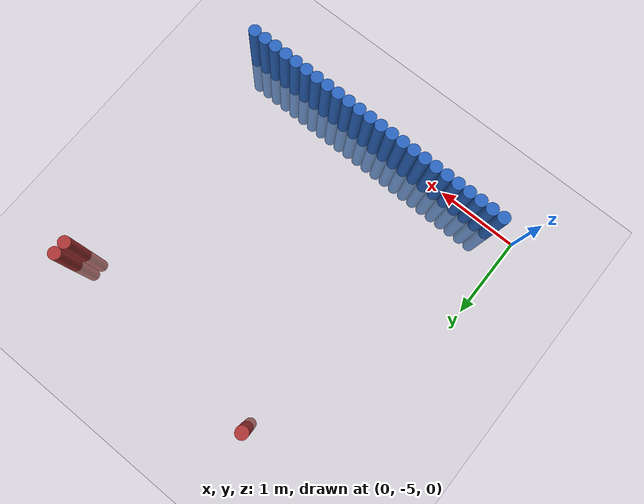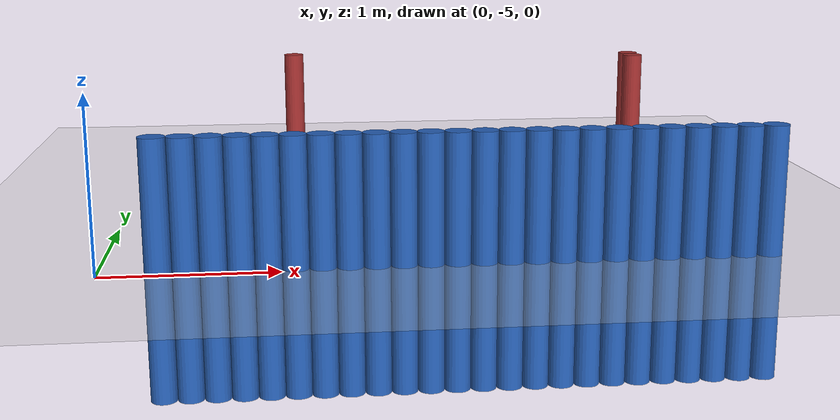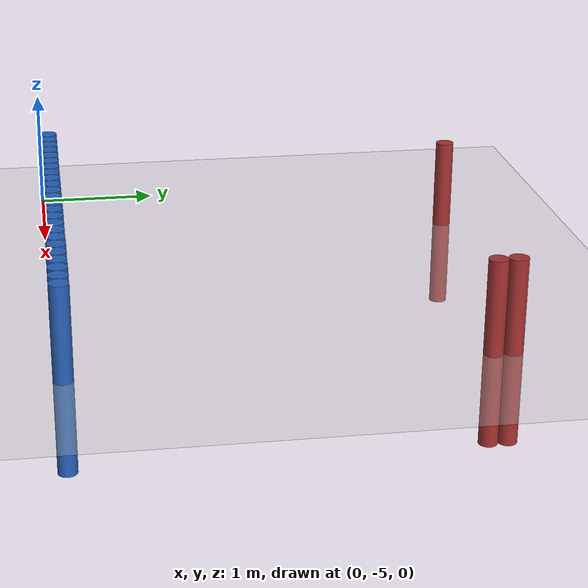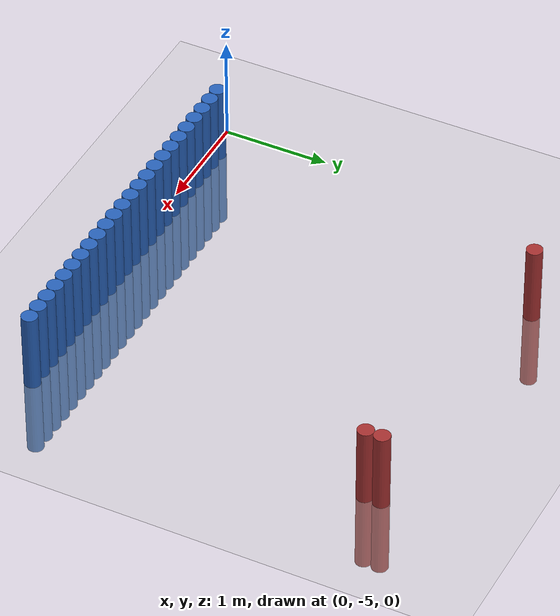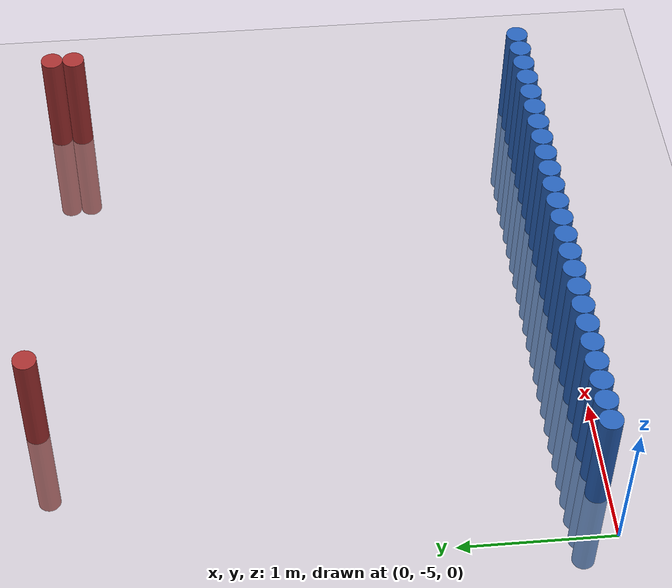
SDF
<sdf version="1.6">
 <world name="default">
  <model name="ground_plane">
   <static>1</static>
   <link name="link">
    <collision name="collision">
     <geometry><plane><normal>0 0 1</normal><size>100 100</size></plane></geometry>
     <surface><friction><ode><mu>100</mu><mu2>50</mu2></ode></friction></surface>
    </collision>
    <visual name="visual">
     <cast_shadows>0</cast_shadows>
     <geometry><plane><normal>0 0 1</normal><size>100 100</size></plane></geometry>
     <material>
      <script><uri>file://media/materials/scripts/gazebo.material</uri><name>Gazebo/Grey</name></script>
     </material>
    </visual>
   </link>
  </model>
  <model name="unit_cylinder_1">
   <static>1</static>
   <pose>3.775000 -4.925000 0.000000 0.000000 0.000000 0.000000</pose>
   <link name="link">
    <inertial>
     <mass>1</mass>
     <inertia><ixx>0.145833</ixx><ixy>0</ixy><ixz>0</ixz><iyy>0.145833</iyy><iyz>0</iyz><izz>0.125</izz></inertia>
    </inertial>
    <collision name="collision">
     <geometry><cylinder><radius>0.075000</radius><length>1.5</length></cylinder></geometry>
    </collision>
    <visual name="visual">
     <geometry><cylinder><radius>0.075000</radius><length>1.5</length></cylinder></geometry>
     <material>
      <ambient>0.152000 0.379000 0.720000 1</ambient>
      <diffuse>0.152000 0.379000 0.720000 1</diffuse>
     </material>
     <material>
      <script><name>Gazebo/Grey</name><uri>file://media/materials/scripts/gazebo.material</uri></script>
     </material>
    </visual>
   </link>
  </model>
  <model name="unit_cylinder_2">
   <static>1</static>
   <pose>3.625000 -4.925000 0.000000 0.000000 0.000000 0.000000</pose>
   <link name="link">
    <inertial>
     <mass>1</mass>
     <inertia><ixx>0.145833</ixx><ixy>0</ixy><ixz>0</ixz><iyy>0.145833</iyy><iyz>0</iyz><izz>0.125</izz></inertia>
    </inertial>
    <collision name="collision">
     <geometry><cylinder><radius>0.075000</radius><length>1.5</length></cylinder></geometry>
    </collision>
    <visual name="visual">
     <geometry><cylinder><radius>0.075000</radius><length>1.5</length></cylinder></geometry>
     <material>
      <ambient>0.152000 0.379000 0.720000 1</ambient>
      <diffuse>0.152000 0.379000 0.720000 1</diffuse>
     </material>
     <material>
      <script><name>Gazebo/Grey</name><uri>file://media/materials/scripts/gazebo.material</uri></script>
     </material>
    </visual>
   </link>
  </model>
  <model name="unit_cylinder_3">
   <static>1</static>
   <pose>3.475000 -4.925000 0.000000 0.000000 0.000000 0.000000</pose>
   <link name="link">
    <inertial>
     <mass>1</mass>
     <inertia><ixx>0.145833</ixx><ixy>0</ixy><ixz>0</ixz><iyy>0.145833</iyy><iyz>0</iyz><izz>0.125</izz></inertia>
    </inertial>
    <collision name="collision">
     <geometry><cylinder><radius>0.075000</radius><length>1.5</length></cylinder></geometry>
    </collision>
    <visual name="visual">
     <geometry><cylinder><radius>0.075000</radius><length>1.5</length></cylinder></geometry>
     <material>
      <ambient>0.152000 0.379000 0.720000 1</ambient>
      <diffuse>0.152000 0.379000 0.720000 1</diffuse>
     </material>
     <material>
      <script><name>Gazebo/Grey</name><uri>file://media/materials/scripts/gazebo.material</uri></script>
     </material>
    </visual>
   </link>
  </model>
  <model name="unit_cylinder_4">
   <static>1</static>
   <pose>3.325000 -4.925000 0.000000 0.000000 0.000000 0.000000</pose>
   <link name="link">
    <inertial>
     <mass>1</mass>
     <inertia><ixx>0.145833</ixx><ixy>0</ixy><ixz>0</ixz><iyy>0.145833</iyy><iyz>0</iyz><izz>0.125</izz></inertia>
    </inertial>
    <collision name="collision">
     <geometry><cylinder><radius>0.075000</radius><length>1.5</length></cylinder></geometry>
    </collision>
    <visual name="visual">
     <geometry><cylinder><radius>0.075000</radius><length>1.5</length></cylinder></geometry>
     <material>
      <ambient>0.152000 0.379000 0.720000 1</ambient>
      <diffuse>0.152000 0.379000 0.720000 1</diffuse>
     </material>
     <material>
      <script><name>Gazebo/Grey</name><uri>file://media/materials/scripts/gazebo.material</uri></script>
     </material>
    </visual>
   </link>
  </model>
  <model name="unit_cylinder_5">
   <static>1</static>
   <pose>3.175000 -4.925000 0.000000 0.000000 0.000000 0.000000</pose>
   <link name="link">
    <inertial>
     <mass>1</mass>
     <inertia><ixx>0.145833</ixx><ixy>0</ixy><ixz>0</ixz><iyy>0.145833</iyy><iyz>0</iyz><izz>0.125</izz></inertia>
    </inertial>
    <collision name="collision">
     <geometry><cylinder><radius>0.075000</radius><length>1.5</length></cylinder></geometry>
    </collision>
    <visual name="visual">
     <geometry><cylinder><radius>0.075000</radius><length>1.5</length></cylinder></geometry>
     <material>
      <ambient>0.152000 0.379000 0.720000 1</ambient>
      <diffuse>0.152000 0.379000 0.720000 1</diffuse>
     </material>
     <material>
      <script><name>Gazebo/Grey</name><uri>file://media/materials/scripts/gazebo.material</uri></script>
     </material>
    </visual>
   </link>
  </model>
  <model name="unit_cylinder_6">
   <static>1</static>
   <pose>3.025000 -4.925000 0.000000 0.000000 0.000000 0.000000</pose>
   <link name="link">
    <inertial>
     <mass>1</mass>
     <inertia><ixx>0.145833</ixx><ixy>0</ixy><ixz>0</ixz><iyy>0.145833</iyy><iyz>0</iyz><izz>0.125</izz></inertia>
    </inertial>
    <collision name="collision">
     <geometry><cylinder><radius>0.075000</radius><length>1.5</length></cylinder></geometry>
    </collision>
    <visual name="visual">
     <geometry><cylinder><radius>0.075000</radius><length>1.5</length></cylinder></geometry>
     <material>
      <ambient>0.152000 0.379000 0.720000 1</ambient>
      <diffuse>0.152000 0.379000 0.720000 1</diffuse>
     </material>
     <material>
      <script><name>Gazebo/Grey</name><uri>file://media/materials/scripts/gazebo.material</uri></script>
     </material>
    </visual>
   </link>
  </model>
  <model name="unit_cylinder_7">
   <static>1</static>
   <pose>2.875000 -4.925000 0.000000 0.000000 0.000000 0.000000</pose>
   <link name="link">
    <inertial>
     <mass>1</mass>
     <inertia><ixx>0.145833</ixx><ixy>0</ixy><ixz>0</ixz><iyy>0.145833</iyy><iyz>0</iyz><izz>0.125</izz></inertia>
    </inertial>
    <collision name="collision">
     <geometry><cylinder><radius>0.075000</radius><length>1.5</length></cylinder></geometry>
    </collision>
    <visual name="visual">
     <geometry><cylinder><radius>0.075000</radius><length>1.5</length></cylinder></geometry>
     <material>
      <ambient>0.152000 0.379000 0.720000 1</ambient>
      <diffuse>0.152000 0.379000 0.720000 1</diffuse>
     </material>
     <material>
      <script><name>Gazebo/Grey</name><uri>file://media/materials/scripts/gazebo.material</uri></script>
     </material>
    </visual>
   </link>
  </model>
  <model name="unit_cylinder_8">
   <static>1</static>
   <pose>2.725000 -4.925000 0.000000 0.000000 0.000000 0.000000</pose>
   <link name="link">
    <inertial>
     <mass>1</mass>
     <inertia><ixx>0.145833</ixx><ixy>0</ixy><ixz>0</ixz><iyy>0.145833</iyy><iyz>0</iyz><izz>0.125</izz></inertia>
    </inertial>
    <collision name="collision">
     <geometry><cylinder><radius>0.075000</radius><length>1.5</length></cylinder></geometry>
    </collision>
    <visual name="visual">
     <geometry><cylinder><radius>0.075000</radius><length>1.5</length></cylinder></geometry>
     <material>
      <ambient>0.152000 0.379000 0.720000 1</ambient>
      <diffuse>0.152000 0.379000 0.720000 1</diffuse>
     </material>
     <material>
      <script><name>Gazebo/Grey</name><uri>file://media/materials/scripts/gazebo.material</uri></script>
     </material>
    </visual>
   </link>
  </model>
  <model name="unit_cylinder_9">
   <static>1</static>
   <pose>2.575000 -4.925000 0.000000 0.000000 0.000000 0.000000</pose>
   <link name="link">
    <inertial>
     <mass>1</mass>
     <inertia><ixx>0.145833</ixx><ixy>0</ixy><ixz>0</ixz><iyy>0.145833</iyy><iyz>0</iyz><izz>0.125</izz></inertia>
    </inertial>
    <collision name="collision">
     <geometry><cylinder><radius>0.075000</radius><length>1.5</length></cylinder></geometry>
    </collision>
    <visual name="visual">
     <geometry><cylinder><radius>0.075000</radius><length>1.5</length></cylinder></geometry>
     <material>
      <ambient>0.152000 0.379000 0.720000 1</ambient>
      <diffuse>0.152000 0.379000 0.720000 1</diffuse>
     </material>
     <material>
      <script><name>Gazebo/Grey</name><uri>file://media/materials/scripts/gazebo.material</uri></script>
     </material>
    </visual>
   </link>
  </model>
  <model name="unit_cylinder_10">
   <static>1</static>
   <pose>2.425000 -4.925000 0.000000 0.000000 0.000000 0.000000</pose>
   <link name="link">
    <inertial>
     <mass>1</mass>
     <inertia><ixx>0.145833</ixx><ixy>0</ixy><ixz>0</ixz><iyy>0.145833</iyy><iyz>0</iyz><izz>0.125</izz></inertia>
    </inertial>
    <collision name="collision">
     <geometry><cylinder><radius>0.075000</radius><length>1.5</length></cylinder></geometry>
    </collision>
    <visual name="visual">
     <geometry><cylinder><radius>0.075000</radius><length>1.5</length></cylinder></geometry>
     <material>
      <ambient>0.152000 0.379000 0.720000 1</ambient>
      <diffuse>0.152000 0.379000 0.720000 1</diffuse>
     </material>
     <material>
      <script><name>Gazebo/Grey</name><uri>file://media/materials/scripts/gazebo.material</uri></script>
     </material>
    </visual>
   </link>
  </model>
  <model name="unit_cylinder_11">
   <static>1</static>
   <pose>2.275000 -4.925000 0.000000 0.000000 0.000000 0.000000</pose>
   <link name="link">
    <inertial>
     <mass>1</mass>
     <inertia><ixx>0.145833</ixx><ixy>0</ixy><ixz>0</ixz><iyy>0.145833</iyy><iyz>0</iyz><izz>0.125</izz></inertia>
    </inertial>
    <collision name="collision">
     <geometry><cylinder><radius>0.075000</radius><length>1.5</length></cylinder></geometry>
    </collision>
    <visual name="visual">
     <geometry><cylinder><radius>0.075000</radius><length>1.5</length></cylinder></geometry>
     <material>
      <ambient>0.152000 0.379000 0.720000 1</ambient>
      <diffuse>0.152000 0.379000 0.720000 1</diffuse>
     </material>
     <material>
      <script><name>Gazebo/Grey</name><uri>file://media/materials/scripts/gazebo.material</uri></script>
     </material>
    </visual>
   </link>
  </model>
  <model name="unit_cylinder_12">
   <static>1</static>
   <pose>2.125000 -4.925000 0.000000 0.000000 0.000000 0.000000</pose>
   <link name="link">
    <inertial>
     <mass>1</mass>
     <inertia><ixx>0.145833</ixx><ixy>0</ixy><ixz>0</ixz><iyy>0.145833</iyy><iyz>0</iyz><izz>0.125</izz></inertia>
    </inertial>
    <collision name="collision">
     <geometry><cylinder><radius>0.075000</radius><length>1.5</length></cylinder></geometry>
    </collision>
    <visual name="visual">
     <geometry><cylinder><radius>0.075000</radius><length>1.5</length></cylinder></geometry>
     <material>
      <ambient>0.152000 0.379000 0.720000 1</ambient>
      <diffuse>0.152000 0.379000 0.720000 1</diffuse>
     </material>
     <material>
      <script><name>Gazebo/Grey</name><uri>file://media/materials/scripts/gazebo.material</uri></script>
     </material>
    </visual>
   </link>
  </model>
  <model name="unit_cylinder_13">
   <static>1</static>
   <pose>1.975000 -4.925000 0.000000 0.000000 0.000000 0.000000</pose>
   <link name="link">
    <inertial>
     <mass>1</mass>
     <inertia><ixx>0.145833</ixx><ixy>0</ixy><ixz>0</ixz><iyy>0.145833</iyy><iyz>0</iyz><izz>0.125</izz></inertia>
    </inertial>
    <collision name="collision">
     <geometry><cylinder><radius>0.075000</radius><length>1.5</length></cylinder></geometry>
    </collision>
    <visual name="visual">
     <geometry><cylinder><radius>0.075000</radius><length>1.5</length></cylinder></geometry>
     <material>
      <ambient>0.152000 0.379000 0.720000 1</ambient>
      <diffuse>0.152000 0.379000 0.720000 1</diffuse>
     </material>
     <material>
      <script><name>Gazebo/Grey</name><uri>file://media/materials/scripts/gazebo.material</uri></script>
     </material>
    </visual>
   </link>
  </model>
  <model name="unit_cylinder_14">
   <static>1</static>
   <pose>1.825000 -4.925000 0.000000 0.000000 0.000000 0.000000</pose>
   <link name="link">
    <inertial>
     <mass>1</mass>
     <inertia><ixx>0.145833</ixx><ixy>0</ixy><ixz>0</ixz><iyy>0.145833</iyy><iyz>0</iyz><izz>0.125</izz></inertia>
    </inertial>
    <collision name="collision">
     <geometry><cylinder><radius>0.075000</radius><length>1.5</length></cylinder></geometry>
    </collision>
    <visual name="visual">
     <geometry><cylinder><radius>0.075000</radius><length>1.5</length></cylinder></geometry>
     <material>
      <ambient>0.152000 0.379000 0.720000 1</ambient>
      <diffuse>0.152000 0.379000 0.720000 1</diffuse>
     </material>
     <material>
      <script><name>Gazebo/Grey</name><uri>file://media/materials/scripts/gazebo.material</uri></script>
     </material>
    </visual>
   </link>
  </model>
  <model name="unit_cylinder_15">
   <static>1</static>
   <pose>1.675000 -4.925000 0.000000 0.000000 0.000000 0.000000</pose>
   <link name="link">
    <inertial>
     <mass>1</mass>
     <inertia><ixx>0.145833</ixx><ixy>0</ixy><ixz>0</ixz><iyy>0.145833</iyy><iyz>0</iyz><izz>0.125</izz></inertia>
    </inertial>
    <collision name="collision">
     <geometry><cylinder><radius>0.075000</radius><length>1.5</length></cylinder></geometry>
    </collision>
    <visual name="visual">
     <geometry><cylinder><radius>0.075000</radius><length>1.5</length></cylinder></geometry>
     <material>
      <ambient>0.152000 0.379000 0.720000 1</ambient>
      <diffuse>0.152000 0.379000 0.720000 1</diffuse>
     </material>
     <material>
      <script><name>Gazebo/Grey</name><uri>file://media/materials/scripts/gazebo.material</uri></script>
     </material>
    </visual>
   </link>
  </model>
  <model name="unit_cylinder_16">
   <static>1</static>
   <pose>1.525000 -4.925000 0.000000 0.000000 0.000000 0.000000</pose>
   <link name="link">
    <inertial>
     <mass>1</mass>
     <inertia><ixx>0.145833</ixx><ixy>0</ixy><ixz>0</ixz><iyy>0.145833</iyy><iyz>0</iyz><izz>0.125</izz></inertia>
    </inertial>
    <collision name="collision">
     <geometry><cylinder><radius>0.075000</radius><length>1.5</length></cylinder></geometry>
    </collision>
    <visual name="visual">
     <geometry><cylinder><radius>0.075000</radius><length>1.5</length></cylinder></geometry>
     <material>
      <ambient>0.152000 0.379000 0.720000 1</ambient>
      <diffuse>0.152000 0.379000 0.720000 1</diffuse>
     </material>
     <material>
      <script><name>Gazebo/Grey</name><uri>file://media/materials/scripts/gazebo.material</uri></script>
     </material>
    </visual>
   </link>
  </model>
  <model name="unit_cylinder_17">
   <static>1</static>
   <pose>1.375000 -4.925000 0.000000 0.000000 0.000000 0.000000</pose>
   <link name="link">
    <inertial>
     <mass>1</mass>
     <inertia><ixx>0.145833</ixx><ixy>0</ixy><ixz>0</ixz><iyy>0.145833</iyy><iyz>0</iyz><izz>0.125</izz></inertia>
    </inertial>
    <collision name="collision">
     <geometry><cylinder><radius>0.075000</radius><length>1.5</length></cylinder></geometry>
    </collision>
    <visual name="visual">
     <geometry><cylinder><radius>0.075000</radius><length>1.5</length></cylinder></geometry>
     <material>
      <ambient>0.152000 0.379000 0.720000 1</ambient>
      <diffuse>0.152000 0.379000 0.720000 1</diffuse>
     </material>
     <material>
      <script><name>Gazebo/Grey</name><uri>file://media/materials/scripts/gazebo.material</uri></script>
     </material>
    </visual>
   </link>
  </model>
  <model name="unit_cylinder_18">
   <static>1</static>
   <pose>1.225000 -4.925000 0.000000 0.000000 0.000000 0.000000</pose>
   <link name="link">
    <inertial>
     <mass>1</mass>
     <inertia><ixx>0.145833</ixx><ixy>0</ixy><ixz>0</ixz><iyy>0.145833</iyy><iyz>0</iyz><izz>0.125</izz></inertia>
    </inertial>
    <collision name="collision">
     <geometry><cylinder><radius>0.075000</radius><length>1.5</length></cylinder></geometry>
    </collision>
    <visual name="visual">
     <geometry><cylinder><radius>0.075000</radius><length>1.5</length></cylinder></geometry>
     <material>
      <ambient>0.152000 0.379000 0.720000 1</ambient>
      <diffuse>0.152000 0.379000 0.720000 1</diffuse>
     </material>
     <material>
      <script><name>Gazebo/Grey</name><uri>file://media/materials/scripts/gazebo.material</uri></script>
     </material>
    </visual>
   </link>
  </model>
  <model name="unit_cylinder_19">
   <static>1</static>
   <pose>1.075000 -4.925000 0.000000 0.000000 0.000000 0.000000</pose>
   <link name="link">
    <inertial>
     <mass>1</mass>
     <inertia><ixx>0.145833</ixx><ixy>0</ixy><ixz>0</ixz><iyy>0.145833</iyy><iyz>0</iyz><izz>0.125</izz></inertia>
    </inertial>
    <collision name="collision">
     <geometry><cylinder><radius>0.075000</radius><length>1.5</length></cylinder></geometry>
    </collision>
    <visual name="visual">
     <geometry><cylinder><radius>0.075000</radius><length>1.5</length></cylinder></geometry>
     <material>
      <ambient>0.152000 0.379000 0.720000 1</ambient>
      <diffuse>0.152000 0.379000 0.720000 1</diffuse>
     </material>
     <material>
      <script><name>Gazebo/Grey</name><uri>file://media/materials/scripts/gazebo.material</uri></script>
     </material>
    </visual>
   </link>
  </model>
  <model name="unit_cylinder_20">
   <static>1</static>
   <pose>0.925000 -4.925000 0.000000 0.000000 0.000000 0.000000</pose>
   <link name="link">
    <inertial>
     <mass>1</mass>
     <inertia><ixx>0.145833</ixx><ixy>0</ixy><ixz>0</ixz><iyy>0.145833</iyy><iyz>0</iyz><izz>0.125</izz></inertia>
    </inertial>
    <collision name="collision">
     <geometry><cylinder><radius>0.075000</radius><length>1.5</length></cylinder></geometry>
    </collision>
    <visual name="visual">
     <geometry><cylinder><radius>0.075000</radius><length>1.5</length></cylinder></geometry>
     <material>
      <ambient>0.152000 0.379000 0.720000 1</ambient>
      <diffuse>0.152000 0.379000 0.720000 1</diffuse>
     </material>
     <material>
      <script><name>Gazebo/Grey</name><uri>file://media/materials/scripts/gazebo.material</uri></script>
     </material>
    </visual>
   </link>
  </model>
  <model name="unit_cylinder_21">
   <static>1</static>
   <pose>0.775000 -4.925000 0.000000 0.000000 0.000000 0.000000</pose>
   <link name="link">
    <inertial>
     <mass>1</mass>
     <inertia><ixx>0.145833</ixx><ixy>0</ixy><ixz>0</ixz><iyy>0.145833</iyy><iyz>0</iyz><izz>0.125</izz></inertia>
    </inertial>
    <collision name="collision">
     <geometry><cylinder><radius>0.075000</radius><length>1.5</length></cylinder></geometry>
    </collision>
    <visual name="visual">
     <geometry><cylinder><radius>0.075000</radius><length>1.5</length></cylinder></geometry>
     <material>
      <ambient>0.152000 0.379000 0.720000 1</ambient>
      <diffuse>0.152000 0.379000 0.720000 1</diffuse>
     </material>
     <material>
      <script><name>Gazebo/Grey</name><uri>file://media/materials/scripts/gazebo.material</uri></script>
     </material>
    </visual>
   </link>
  </model>
  <model name="unit_cylinder_22">
   <static>1</static>
   <pose>0.625000 -4.925000 0.000000 0.000000 0.000000 0.000000</pose>
   <link name="link">
    <inertial>
     <mass>1</mass>
     <inertia><ixx>0.145833</ixx><ixy>0</ixy><ixz>0</ixz><iyy>0.145833</iyy><iyz>0</iyz><izz>0.125</izz></inertia>
    </inertial>
    <collision name="collision">
     <geometry><cylinder><radius>0.075000</radius><length>1.5</length></cylinder></geometry>
    </collision>
    <visual name="visual">
     <geometry><cylinder><radius>0.075000</radius><length>1.5</length></cylinder></geometry>
     <material>
      <ambient>0.152000 0.379000 0.720000 1</ambient>
      <diffuse>0.152000 0.379000 0.720000 1</diffuse>
     </material>
     <material>
      <script><name>Gazebo/Grey</name><uri>file://media/materials/scripts/gazebo.material</uri></script>
     </material>
    </visual>
   </link>
  </model>
  <model name="unit_cylinder_23">
   <static>1</static>
   <pose>0.475000 -4.925000 0.000000 0.000000 0.000000 0.000000</pose>
   <link name="link">
    <inertial>
     <mass>1</mass>
     <inertia><ixx>0.145833</ixx><ixy>0</ixy><ixz>0</ixz><iyy>0.145833</iyy><iyz>0</iyz><izz>0.125</izz></inertia>
    </inertial>
    <collision name="collision">
     <geometry><cylinder><radius>0.075000</radius><length>1.5</length></cylinder></geometry>
    </collision>
    <visual name="visual">
     <geometry><cylinder><radius>0.075000</radius><length>1.5</length></cylinder></geometry>
     <material>
      <ambient>0.152000 0.379000 0.720000 1</ambient>
      <diffuse>0.152000 0.379000 0.720000 1</diffuse>
     </material>
     <material>
      <script><name>Gazebo/Grey</name><uri>file://media/materials/scripts/gazebo.material</uri></script>
     </material>
    </visual>
   </link>
  </model>
  <model name="unit_cylinder_24">
   <static>1</static>
   <pose>0.325000 -4.925000 0.000000 0.000000 0.000000 0.000000</pose>
   <link name="link">
    <inertial>
     <mass>1</mass>
     <inertia><ixx>0.145833</ixx><ixy>0</ixy><ixz>0</ixz><iyy>0.145833</iyy><iyz>0</iyz><izz>0.125</izz></inertia>
    </inertial>
    <collision name="collision">
     <geometry><cylinder><radius>0.075000</radius><length>1.5</length></cylinder></geometry>
    </collision>
    <visual name="visual">
     <geometry><cylinder><radius>0.075000</radius><length>1.5</length></cylinder></geometry>
     <material>
      <ambient>0.152000 0.379000 0.720000 1</ambient>
      <diffuse>0.152000 0.379000 0.720000 1</diffuse>
     </material>
     <material>
      <script><name>Gazebo/Grey</name><uri>file://media/materials/scripts/gazebo.material</uri></script>
     </material>
    </visual>
   </link>
  </model>
  <model name="unit_cylinder_366">
   <static>1</static>
   <pose>1.075000 -1.475000 0.000000 0.000000 0.000000 0.000000</pose>
   <link name="link">
    <inertial>
     <mass>1</mass>
     <inertia><ixx>0.145833</ixx><ixy>0</ixy><ixz>0</ixz><iyy>0.145833</iyy><iyz>0</iyz><izz>0.125</izz></inertia>
    </inertial>
    <collision name="collision">
     <geometry><cylinder><radius>0.075000</radius><length>1.5</length></cylinder></geometry>
    </collision>
    <visual name="visual">
     <geometry><cylinder><radius>0.075000</radius><length>1.5</length></cylinder></geometry>
     <material>
      <ambient>0.648000 0.192000 0.192000 1</ambient>
      <diffuse>0.648000 0.192000 0.192000 1</diffuse>
     </material>
     <material>
      <script><name>Gazebo/Grey</name><uri>file://media/materials/scripts/gazebo.material</uri></script>
     </material>
    </visual>
   </link>
  </model>
  <model name="unit_cylinder_422">
   <static>1</static>
   <pose>3.775000 -1.775000 0.000000 0.000000 0.000000 0.000000</pose>
   <link name="link">
    <inertial>
     <mass>1</mass>
     <inertia><ixx>0.145833</ixx><ixy>0</ixy><ixz>0</ixz><iyy>0.145833</iyy><iyz>0</iyz><izz>0.125</izz></inertia>
    </inertial>
    <collision name="collision">
     <geometry><cylinder><radius>0.075000</radius><length>1.5</length></cylinder></geometry>
    </collision>
    <visual name="visual">
     <geometry><cylinder><radius>0.075000</radius><length>1.5</length></cylinder></geometry>
     <material>
      <ambient>0.648000 0.192000 0.192000 1</ambient>
      <diffuse>0.648000 0.192000 0.192000 1</diffuse>
     </material>
     <material>
      <script><name>Gazebo/Grey</name><uri>file://media/materials/scripts/gazebo.material</uri></script>
     </material>
    </visual>
   </link>
  </model>
  <model name="unit_cylinder_423">
   <static>1</static>
   <pose>3.775000 -1.625000 0.000000 0.000000 0.000000 0.000000</pose>
   <link name="link">
    <inertial>
     <mass>1</mass>
     <inertia><ixx>0.145833</ixx><ixy>0</ixy><ixz>0</ixz><iyy>0.145833</iyy><iyz>0</iyz><izz>0.125</izz></inertia>
    </inertial>
    <collision name="collision">
     <geometry><cylinder><radius>0.075000</radius><length>1.5</length></cylinder></geometry>
    </collision>
    <visual name="visual">
     <geometry><cylinder><radius>0.075000</radius><length>1.5</length></cylinder></geometry>
     <material>
      <ambient>0.648000 0.192000 0.192000 1</ambient>
      <diffuse>0.648000 0.192000 0.192000 1</diffuse>
     </material>
     <material>
      <script><name>Gazebo/Grey</name><uri>file://media/materials/scripts/gazebo.material</uri></script>
     </material>
    </visual>
   </link>
  </model>
 </world>
</sdf>
